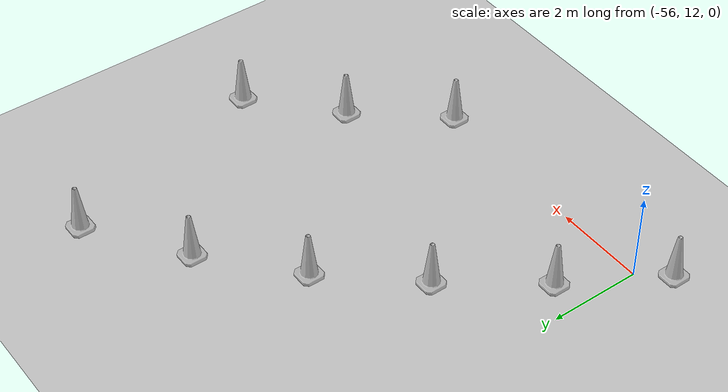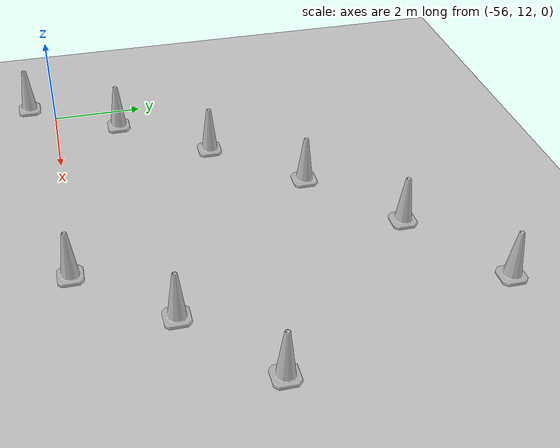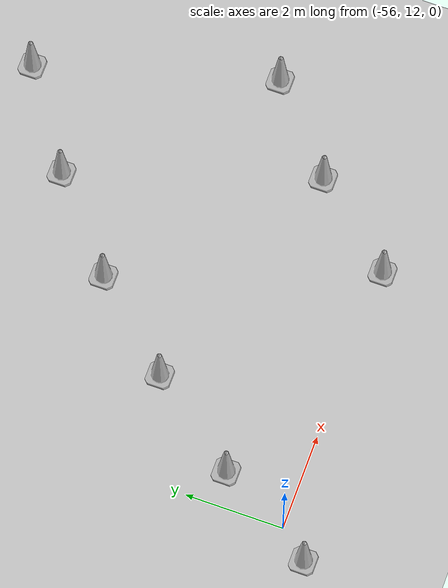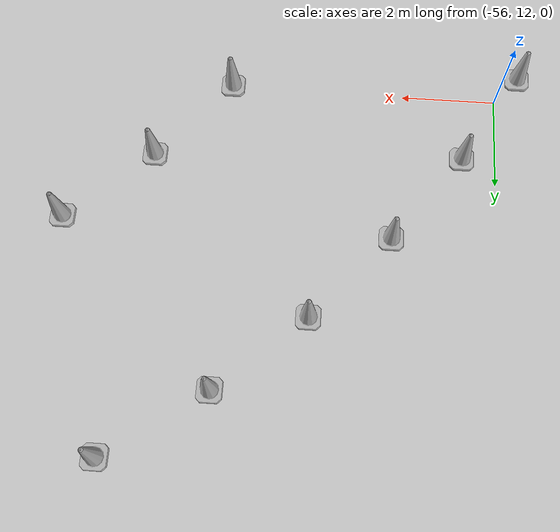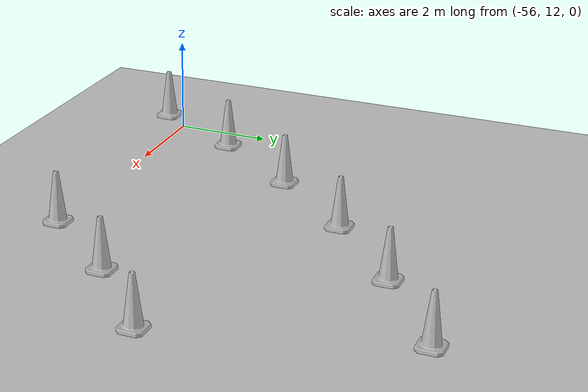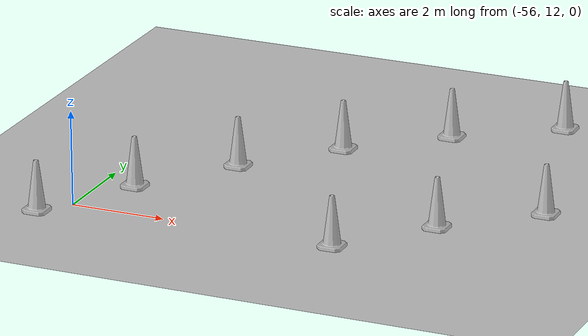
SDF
<sdf version="1.7">
 <world name="default">
  <model name="ground_plane">
   <static>1</static>
   <link name="link">
    <collision name="collision">
     <geometry><plane><normal>0 0 1</normal><size>125 125</size></plane></geometry>
     <surface>
      <contact><collide_bitmask>65535</collide_bitmask></contact>
      <friction><ode><mu>100</mu><mu2>50</mu2></ode></friction>
     </surface>
    </collision>
    <visual name="visual">
     <cast_shadows>0</cast_shadows>
     <geometry><plane><normal>0 0 1</normal><size>125 125</size></plane></geometry>
     <material>
      <script><uri>file://media/materials/scripts/gazebo.material</uri><name>Gazebo/Grey</name></script>
     </material>
    </visual>
   </link>
  </model>
  <model name="Construction Cone 83">
   <link name="link">
    <collision name="collision">
     <geometry>
      <mesh><scale>10 10 10</scale><uri>model://construction_cone/meshes/construction_cone.dae</uri></mesh>
     </geometry>
    </collision>
    <visual name="visual">
     <geometry>
      <mesh><scale>10 10 10</scale><uri>model://construction_cone/meshes/construction_cone.dae</uri></mesh>
     </geometry>
    </visual>
    <inertial>
     <inertia><ixx>1</ixx><ixy>0</ixy><ixz>0</ixz><iyy>1</iyy><iyz>0</iyz><izz>1</izz></inertia>
     <mass>1</mass>
    </inertial>
   </link>
   <pose>-48.45075161880874 20.058855827656046 0 0 0 0</pose>
  </model>
  <model name="Construction Cone 93">
   <link name="link">
    <collision name="collision">
     <geometry>
      <mesh><scale>10 10 10</scale><uri>model://construction_cone/meshes/construction_cone.dae</uri></mesh>
     </geometry>
    </collision>
    <visual name="visual">
     <geometry>
      <mesh><scale>10 10 10</scale><uri>model://construction_cone/meshes/construction_cone.dae</uri></mesh>
     </geometry>
    </visual>
    <inertial>
     <inertia><ixx>1</ixx><ixy>0</ixy><ixz>0</ixz><iyy>1</iyy><iyz>0</iyz><izz>1</izz></inertia>
     <mass>1</mass>
    </inertial>
   </link>
   <pose>-50.45775161880874 18.67285582765605 0 0 0 0</pose>
  </model>
  <model name="Construction Cone 103">
   <link name="link">
    <collision name="collision">
     <geometry>
      <mesh><scale>10 10 10</scale><uri>model://construction_cone/meshes/construction_cone.dae</uri></mesh>
     </geometry>
    </collision>
    <visual name="visual">
     <geometry>
      <mesh><scale>10 10 10</scale><uri>model://construction_cone/meshes/construction_cone.dae</uri></mesh>
     </geometry>
    </visual>
    <inertial>
     <inertia><ixx>1</ixx><ixy>0</ixy><ixz>0</ixz><iyy>1</iyy><iyz>0</iyz><izz>1</izz></inertia>
     <mass>1</mass>
    </inertial>
   </link>
   <pose>-52.25775161880874 17.10910582765605 0 0 0 0</pose>
  </model>
  <model name="Construction Cone 110">
   <link name="link">
    <collision name="collision">
     <geometry>
      <mesh><scale>10 10 10</scale><uri>model://construction_cone/meshes/construction_cone.dae</uri></mesh>
     </geometry>
    </collision>
    <visual name="visual">
     <geometry>
      <mesh><scale>10 10 10</scale><uri>model://construction_cone/meshes/construction_cone.dae</uri></mesh>
     </geometry>
    </visual>
    <inertial>
     <inertia><ixx>1</ixx><ixy>0</ixy><ixz>0</ixz><iyy>1</iyy><iyz>0</iyz><izz>1</izz></inertia>
     <mass>1</mass>
    </inertial>
   </link>
   <pose>-53.850751618808744 15.333855827656052 0 0 0 0</pose>
  </model>
  <model name="Construction Cone 111">
   <link name="link">
    <collision name="collision">
     <geometry>
      <mesh><scale>10 10 10</scale><uri>model://construction_cone/meshes/construction_cone.dae</uri></mesh>
     </geometry>
    </collision>
    <visual name="visual">
     <geometry>
      <mesh><scale>10 10 10</scale><uri>model://construction_cone/meshes/construction_cone.dae</uri></mesh>
     </geometry>
    </visual>
    <inertial>
     <inertia><ixx>1</ixx><ixy>0</ixy><ixz>0</ixz><iyy>1</iyy><iyz>0</iyz><izz>1</izz></inertia>
     <mass>1</mass>
    </inertial>
   </link>
   <pose>-47.06025161880874 15.252855827656049 0 0 0 0</pose>
  </model>
  <model name="Construction Cone 115">
   <link name="link">
    <collision name="collision">
     <geometry>
      <mesh><scale>10 10 10</scale><uri>model://construction_cone/meshes/construction_cone.dae</uri></mesh>
     </geometry>
    </collision>
    <visual name="visual">
     <geometry>
      <mesh><scale>10 10 10</scale><uri>model://construction_cone/meshes/construction_cone.dae</uri></mesh>
     </geometry>
    </visual>
    <inertial>
     <inertia><ixx>1</ixx><ixy>0</ixy><ixz>0</ixz><iyy>1</iyy><iyz>0</iyz><izz>1</izz></inertia>
     <mass>1</mass>
    </inertial>
   </link>
   <pose>-48.792751618808744 13.722855827656048 0 0 0 0</pose>
  </model>
  <model name="Construction Cone 117">
   <link name="link">
    <collision name="collision">
     <geometry>
      <mesh><scale>10 10 10</scale><uri>model://construction_cone/meshes/construction_cone.dae</uri></mesh>
     </geometry>
    </collision>
    <visual name="visual">
     <geometry>
      <mesh><scale>10 10 10</scale><uri>model://construction_cone/meshes/construction_cone.dae</uri></mesh>
     </geometry>
    </visual>
    <inertial>
     <inertia><ixx>1</ixx><ixy>0</ixy><ixz>0</ixz><iyy>1</iyy><iyz>0</iyz><izz>1</izz></inertia>
     <mass>1</mass>
    </inertial>
   </link>
   <pose>-55.29525161880874 13.43035582765605 0 0 0 0</pose>
  </model>
  <model name="Construction Cone 124">
   <link name="link">
    <collision name="collision">
     <geometry>
      <mesh><scale>10 10 10</scale><uri>model://construction_cone/meshes/construction_cone.dae</uri></mesh>
     </geometry>
    </collision>
    <visual name="visual">
     <geometry>
      <mesh><scale>10 10 10</scale><uri>model://construction_cone/meshes/construction_cone.dae</uri></mesh>
     </geometry>
    </visual>
    <inertial>
     <inertia><ixx>1</ixx><ixy>0</ixy><ixz>0</ixz><iyy>1</iyy><iyz>0</iyz><izz>1</izz></inertia>
     <mass>1</mass>
    </inertial>
   </link>
   <pose>-50.300251618808744 11.945355827656051 0 0 0 0</pose>
  </model>
  <model name="Construction Cone 128">
   <link name="link">
    <collision name="collision">
     <geometry>
      <mesh><scale>10 10 10</scale><uri>model://construction_cone/meshes/construction_cone.dae</uri></mesh>
     </geometry>
    </collision>
    <visual name="visual">
     <geometry>
      <mesh><scale>10 10 10</scale><uri>model://construction_cone/meshes/construction_cone.dae</uri></mesh>
     </geometry>
    </visual>
    <inertial>
     <inertia><ixx>1</ixx><ixy>0</ixy><ixz>0</ixz><iyy>1</iyy><iyz>0</iyz><izz>1</izz></inertia>
     <mass>1</mass>
    </inertial>
   </link>
   <pose>-56.510251618808745 11.405355827656045 0 0 0 0</pose>
  </model>
 </world>
</sdf>
